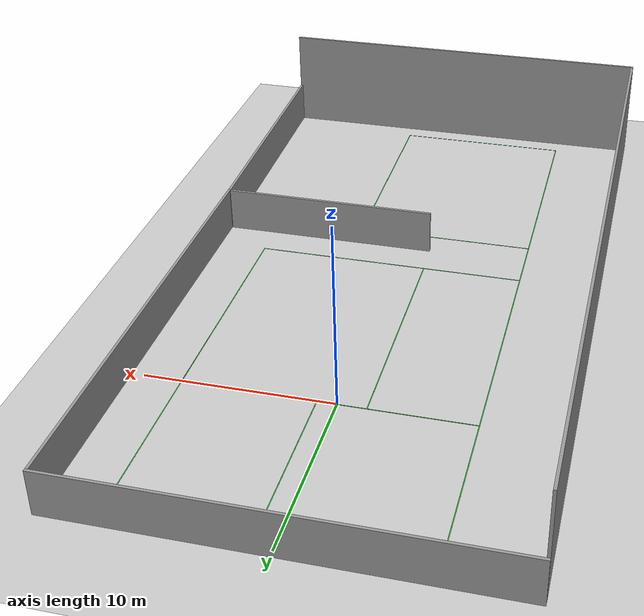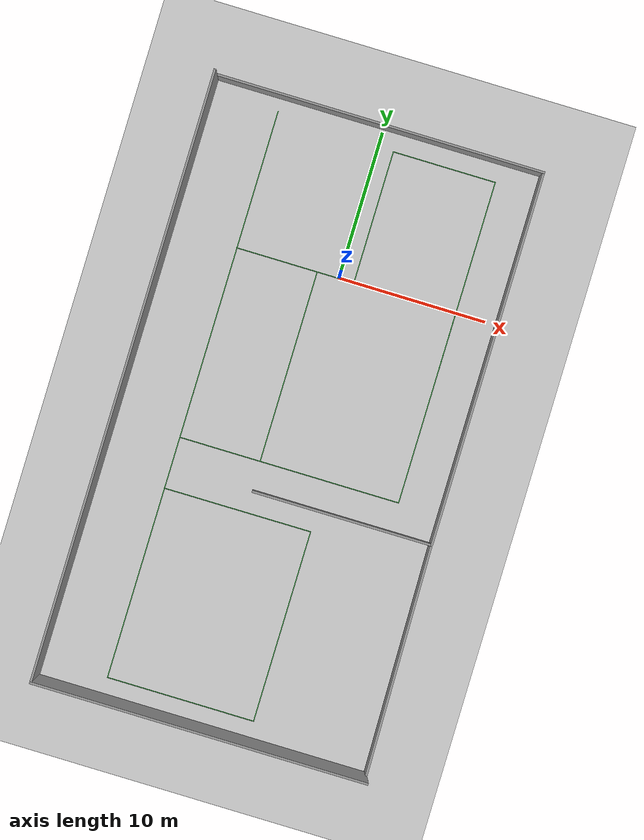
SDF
<sdf version="1.7">
 <world name="default">
  <gravity>0 0 -9.81</gravity>
  <magnetic_field>6e-06 2.3e-05 -4.2e-05</magnetic_field>
  <atmosphere type="adiabatic"/>
  <physics type="ode">
   <max_step_size>0.001</max_step_size>
   <real_time_factor>1</real_time_factor>
   <real_time_update_rate>1000</real_time_update_rate>
  </physics>
  <scene><ambient>0.4 0.4 0.4 1</ambient><background>0.7 0.7 0.7 1</background><shadows>1</shadows></scene>
  <spherical_coordinates>
   <surface_model>EARTH_WGS84</surface_model>
   <latitude_deg>0</latitude_deg>
   <longitude_deg>0</longitude_deg>
   <elevation>0</elevation>
   <heading_deg>0</heading_deg>
  </spherical_coordinates>
  <light name="sun" type="directional">
   <pose>-0.166662 0.016345 10 0 -0 0</pose>
   <diffuse>0.8 0.8 0.8 1</diffuse>
   <specular>0.2 0.2 0.2 1</specular>
   <attenuation>
    <range>1000</range>
    <constant>0.9</constant>
    <linear>0.01</linear>
    <quadratic>0.001</quadratic>
   </attenuation>
   <direction>-0.5 0.1 -0.9</direction>
   <spot><inner_angle>0</inner_angle><outer_angle>0</outer_angle><falloff>0</falloff></spot>
  </light>
  <model name="ground_plane">
   <static>1</static>
   <link name="link">
    <collision name="collision">
     <geometry><plane><normal>0 0 1</normal><size>100 100</size></plane></geometry>
     <surface><friction><ode><mu>100</mu><mu2>50</mu2></ode></friction></surface>
    </collision>
    <visual name="visual">
     <cast_shadows>0</cast_shadows>
     <geometry><plane><normal>0 0 1</normal><size>100 100</size></plane></geometry>
     <material>
      <script><uri>file://media/materials/scripts/gazebo.material</uri><name>Gazebo/Grey</name></script>
     </material>
    </visual>
   </link>
   <pose>-0.106054 1 0 0 0 -1.57</pose>
  </model>
  <model name="wherehuse">
   <link name="Wall_1">
    <pose>-12.6448 0.000598 0 0 -0 1.5708</pose>
    <inertial>
     <mass>1</mass>
     <inertia><ixx>1</ixx><ixy>0</ixy><ixz>0</ixz><iyy>1</iyy><iyz>0</iyz><izz>1</izz></inertia>
    </inertial>
    <visual name="Wall_1_Visual">
     <pose>0 0 3 0 -0 0</pose>
     <geometry><box><size>40.75 0.15 6</size></box></geometry>
     <material>
      <script><uri>file://media/materials/scripts/gazebo.material</uri><name>Gazebo/Grey</name></script>
      <ambient>1 1 1 1</ambient>
      <shader type="pixel"><normal_map>__default__</normal_map></shader>
      <diffuse>0.7 0.7 0.7 1</diffuse>
      <specular>0.01 0.01 0.01 1</specular>
      <emissive>0 0 0 1</emissive>
     </material>
     <meta><layer>0</layer></meta>
    </visual>
    <collision name="Wall_1_Collision">
     <pose>0 0 1.25 0 -0 0</pose>
     <geometry><box><size>40.75 0.15 2.5</size></box></geometry>
     <surface>
      <friction>
       <ode><mu>1</mu><mu2>1</mu2><fdir1>0 0 0</fdir1><slip1>0</slip1><slip2>0</slip2></ode>
       <torsional>
        <coefficient>1</coefficient>
        <patch_radius>0</patch_radius>
        <surface_radius>0</surface_radius>
        <use_patch_radius>1</use_patch_radius>
        <ode><slip>0</slip></ode>
       </torsional>
      </friction>
      <bounce><restitution_coefficient>0</restitution_coefficient><threshold>1e+06</threshold></bounce>
      <contact>
       <collide_without_contact>0</collide_without_contact>
       <collide_without_contact_bitmask>1</collide_without_contact_bitmask>
       <collide_bitmask>1</collide_bitmask>
       <ode>
        <soft_cfm>0</soft_cfm>
        <soft_erp>0.2</soft_erp>
        <kp>1e+13</kp>
        <kd>1</kd>
        <max_vel>0.01</max_vel>
        <min_depth>0</min_depth>
       </ode>
       <bullet>
        <split_impulse>1</split_impulse>
        <split_impulse_penetration_threshold>-0.01</split_impulse_penetration_threshold>
        <soft_cfm>0</soft_cfm>
        <soft_erp>0.2</soft_erp>
        <kp>1e+13</kp>
        <kd>1</kd>
       </bullet>
      </contact>
     </surface>
    </collision>
   </link>
   <link name="Wall_2">
    <pose>-1.572 20.4506 0 0 -0 0</pose>
    <inertial>
     <mass>1</mass>
     <inertia><ixx>1</ixx><ixy>0</ixy><ixz>0</ixz><iyy>1</iyy><iyz>0</iyz><izz>1</izz></inertia>
    </inertial>
    <visual name="Wall_2_Visual">
     <pose>0 0 1.25 0 -0 0</pose>
     <geometry><box><size>22.295 0.15 2.5</size></box></geometry>
     <material>
      <script><uri>file://media/materials/scripts/gazebo.material</uri><name>Gazebo/Grey</name></script>
      <ambient>1 1 1 1</ambient>
      <shader type="pixel"><normal_map>__default__</normal_map></shader>
      <diffuse>0.7 0.7 0.7 1</diffuse>
      <specular>0.01 0.01 0.01 1</specular>
      <emissive>0 0 0 1</emissive>
     </material>
     <meta><layer>0</layer></meta>
    </visual>
    <collision name="Wall_2_Collision">
     <pose>0 0 1.25 0 -0 0</pose>
     <geometry><box><size>25.25 0.15 2.5</size></box></geometry>
     <surface>
      <friction>
       <ode><mu>1</mu><mu2>1</mu2><fdir1>0 0 0</fdir1><slip1>0</slip1><slip2>0</slip2></ode>
       <torsional>
        <coefficient>1</coefficient>
        <patch_radius>0</patch_radius>
        <surface_radius>0</surface_radius>
        <use_patch_radius>1</use_patch_radius>
        <ode><slip>0</slip></ode>
       </torsional>
      </friction>
      <bounce><restitution_coefficient>0</restitution_coefficient><threshold>1e+06</threshold></bounce>
      <contact>
       <collide_without_contact>0</collide_without_contact>
       <collide_without_contact_bitmask>1</collide_without_contact_bitmask>
       <collide_bitmask>1</collide_bitmask>
       <ode>
        <soft_cfm>0</soft_cfm>
        <soft_erp>0.2</soft_erp>
        <kp>1e+13</kp>
        <kd>1</kd>
        <max_vel>0.01</max_vel>
        <min_depth>0</min_depth>
       </ode>
       <bullet>
        <split_impulse>1</split_impulse>
        <split_impulse_penetration_threshold>-0.01</split_impulse_penetration_threshold>
        <soft_cfm>0</soft_cfm>
        <soft_erp>0.2</soft_erp>
        <kp>1e+13</kp>
        <kd>1</kd>
       </bullet>
      </contact>
     </surface>
    </collision>
   </link>
   <link name="Wall_3">
    <pose>9.5 7.75061 0 0 0 -1.5708</pose>
    <inertial>
     <mass>1</mass>
     <inertia><ixx>1</ixx><ixy>0</ixy><ixz>0</ixz><iyy>1</iyy><iyz>0</iyz><izz>1</izz></inertia>
    </inertial>
    <visual name="Wall_3_Visual">
     <pose>0 0 1.25 0 -0 0</pose>
     <geometry><box><size>25.25 0.15 2.5</size></box></geometry>
     <material>
      <script><uri>file://media/materials/scripts/gazebo.material</uri><name>Gazebo/Grey</name></script>
      <ambient>1 1 1 1</ambient>
      <shader type="pixel"><normal_map>__default__</normal_map></shader>
      <diffuse>0.7 0.7 0.7 1</diffuse>
      <specular>0.01 0.01 0.01 1</specular>
      <emissive>0 0 0 1</emissive>
     </material>
     <meta><layer>0</layer></meta>
    </visual>
    <collision name="Wall_3_Collision">
     <pose>0 0 1.25 0 -0 0</pose>
     <geometry><box><size>25.25 0.15 2.5</size></box></geometry>
     <surface>
      <friction>
       <ode><mu>1</mu><mu2>1</mu2><fdir1>0 0 0</fdir1><slip1>0</slip1><slip2>0</slip2></ode>
       <torsional>
        <coefficient>1</coefficient>
        <patch_radius>0</patch_radius>
        <surface_radius>0</surface_radius>
        <use_patch_radius>1</use_patch_radius>
        <ode><slip>0</slip></ode>
       </torsional>
      </friction>
      <bounce><restitution_coefficient>0</restitution_coefficient><threshold>1e+06</threshold></bounce>
      <contact>
       <collide_without_contact>0</collide_without_contact>
       <collide_without_contact_bitmask>1</collide_without_contact_bitmask>
       <collide_bitmask>1</collide_bitmask>
       <ode>
        <soft_cfm>0</soft_cfm>
        <soft_erp>0.2</soft_erp>
        <kp>1e+13</kp>
        <kd>1</kd>
        <max_vel>0.01</max_vel>
        <min_depth>0</min_depth>
       </ode>
       <bullet>
        <split_impulse>1</split_impulse>
        <split_impulse_penetration_threshold>-0.01</split_impulse_penetration_threshold>
        <soft_cfm>0</soft_cfm>
        <soft_erp>0.2</soft_erp>
        <kp>1e+13</kp>
        <kd>1</kd>
       </bullet>
      </contact>
     </surface>
    </collision>
   </link>
   <link name="Wall_5">
    <pose>3.45 -4.7994 0 0 -0 3.14159</pose>
    <inertial>
     <mass>1</mass>
     <inertia><ixx>1</ixx><ixy>0</ixy><ixz>0</ixz><iyy>1</iyy><iyz>0</iyz><izz>1</izz></inertia>
    </inertial>
    <visual name="Wall_5_Visual">
     <pose>0 0 1.25 0 -0 0</pose>
     <geometry><box><size>12.25 0.15 2.5</size></box></geometry>
     <material>
      <script><uri>file://media/materials/scripts/gazebo.material</uri><name>Gazebo/Grey</name></script>
      <ambient>1 1 1 1</ambient>
      <shader type="pixel"><normal_map>__default__</normal_map></shader>
      <diffuse>0.7 0.7 0.7 1</diffuse>
      <specular>0.01 0.01 0.01 1</specular>
      <emissive>0 0 0 1</emissive>
     </material>
     <meta><layer>0</layer></meta>
    </visual>
    <collision name="Wall_5_Collision">
     <pose>0 0 1.25 0 -0 0</pose>
     <geometry><box><size>12.25 0.15 2.5</size></box></geometry>
     <surface>
      <friction>
       <ode><mu>1</mu><mu2>1</mu2><fdir1>0 0 0</fdir1><slip1>0</slip1><slip2>0</slip2></ode>
       <torsional>
        <coefficient>1</coefficient>
        <patch_radius>0</patch_radius>
        <surface_radius>0</surface_radius>
        <use_patch_radius>1</use_patch_radius>
        <ode><slip>0</slip></ode>
       </torsional>
      </friction>
      <bounce><restitution_coefficient>0</restitution_coefficient><threshold>1e+06</threshold></bounce>
      <contact>
       <collide_without_contact>0</collide_without_contact>
       <collide_without_contact_bitmask>1</collide_without_contact_bitmask>
       <collide_bitmask>1</collide_bitmask>
       <ode>
        <soft_cfm>0</soft_cfm>
        <soft_erp>0.2</soft_erp>
        <kp>1e+13</kp>
        <kd>1</kd>
        <max_vel>0.01</max_vel>
        <min_depth>0</min_depth>
       </ode>
       <bullet>
        <split_impulse>1</split_impulse>
        <split_impulse_penetration_threshold>-0.01</split_impulse_penetration_threshold>
        <soft_cfm>0</soft_cfm>
        <soft_erp>0.2</soft_erp>
        <kp>1e+13</kp>
        <kd>1</kd>
       </bullet>
      </contact>
     </surface>
    </collision>
   </link>
   <link name="Wall_7">
    <pose>-1.458 -20.4495 0 0 -0 0</pose>
    <inertial>
     <mass>1</mass>
     <inertia><ixx>1</ixx><ixy>0</ixy><ixz>0</ixz><iyy>1</iyy><iyz>0</iyz><izz>1</izz></inertia>
    </inertial>
    <visual name="Wall_7_Visual">
     <pose>0 0 3 0 -0 0</pose>
     <geometry><box><size>22.525 0.15 6</size></box></geometry>
     <material>
      <script><uri>file://media/materials/scripts/gazebo.material</uri><name>Gazebo/Grey</name></script>
      <ambient>1 1 1 1</ambient>
      <shader type="pixel"><normal_map>__default__</normal_map></shader>
      <diffuse>0.7 0.7 0.7 1</diffuse>
      <specular>0.01 0.01 0.01 1</specular>
      <emissive>0 0 0 1</emissive>
     </material>
     <meta><layer>0</layer></meta>
    </visual>
    <collision name="Wall_7_Collision">
     <pose>0 0 1.25 0 -0 0</pose>
     <geometry><box><size>25.5 0.15 2.5</size></box></geometry>
     <surface>
      <friction>
       <ode><mu>1</mu><mu2>1</mu2><fdir1>0 0 0</fdir1><slip1>0</slip1><slip2>0</slip2></ode>
       <torsional>
        <coefficient>1</coefficient>
        <patch_radius>0</patch_radius>
        <surface_radius>0</surface_radius>
        <use_patch_radius>1</use_patch_radius>
        <ode><slip>0</slip></ode>
       </torsional>
      </friction>
      <bounce><restitution_coefficient>0</restitution_coefficient><threshold>1e+06</threshold></bounce>
      <contact>
       <collide_without_contact>0</collide_without_contact>
       <collide_without_contact_bitmask>1</collide_without_contact_bitmask>
       <collide_bitmask>1</collide_bitmask>
       <ode>
        <soft_cfm>0</soft_cfm>
        <soft_erp>0.2</soft_erp>
        <kp>1e+13</kp>
        <kd>1</kd>
        <max_vel>0.01</max_vel>
        <min_depth>0</min_depth>
       </ode>
       <bullet>
        <split_impulse>1</split_impulse>
        <split_impulse_penetration_threshold>-0.01</split_impulse_penetration_threshold>
        <soft_cfm>0</soft_cfm>
        <soft_erp>0.2</soft_erp>
        <kp>1e+13</kp>
        <kd>1</kd>
       </bullet>
      </contact>
     </surface>
    </collision>
   </link>
   <link name="Wall_8">
    <pose>9.60656 -12.5245 0 0 -0 1.58692</pose>
    <inertial>
     <mass>1</mass>
     <inertia><ixx>1</ixx><ixy>0</ixy><ixz>0</ixz><iyy>1</iyy><iyz>0</iyz><izz>1</izz></inertia>
    </inertial>
    <visual name="Wall_8_Visual">
     <pose>0 0 1.25 0 -0 0</pose>
     <geometry><box><size>15.652 0.15 2.5</size></box></geometry>
     <material>
      <script><uri>file://media/materials/scripts/gazebo.material</uri><name>Gazebo/Grey</name></script>
      <ambient>1 1 1 1</ambient>
      <shader type="pixel"><normal_map>__default__</normal_map></shader>
      <diffuse>0.7 0.7 0.7 1</diffuse>
      <specular>0.01 0.01 0.01 1</specular>
      <emissive>0 0 0 1</emissive>
     </material>
     <meta><layer>0</layer></meta>
    </visual>
    <collision name="Wall_8_Collision">
     <pose>0 0 1.25 0 -0 0</pose>
     <geometry><box><size>15.652 0.15 2.5</size></box></geometry>
     <surface>
      <friction>
       <ode><mu>1</mu><mu2>1</mu2><fdir1>0 0 0</fdir1><slip1>0</slip1><slip2>0</slip2></ode>
       <torsional>
        <coefficient>1</coefficient>
        <patch_radius>0</patch_radius>
        <surface_radius>0</surface_radius>
        <use_patch_radius>1</use_patch_radius>
        <ode><slip>0</slip></ode>
       </torsional>
      </friction>
      <bounce><restitution_coefficient>0</restitution_coefficient><threshold>1e+06</threshold></bounce>
      <contact>
       <collide_without_contact>0</collide_without_contact>
       <collide_without_contact_bitmask>1</collide_without_contact_bitmask>
       <collide_bitmask>1</collide_bitmask>
       <ode>
        <soft_cfm>0</soft_cfm>
        <soft_erp>0.2</soft_erp>
        <kp>1e+13</kp>
        <kd>1</kd>
        <max_vel>0.01</max_vel>
        <min_depth>0</min_depth>
       </ode>
       <bullet>
        <split_impulse>1</split_impulse>
        <split_impulse_penetration_threshold>-0.01</split_impulse_penetration_threshold>
        <soft_cfm>0</soft_cfm>
        <soft_erp>0.2</soft_erp>
        <kp>1e+13</kp>
        <kd>1</kd>
       </bullet>
      </contact>
     </surface>
    </collision>
   </link>
   <static>1</static>
   <pose>1.2324 -10.1771 0 0 -0 0</pose>
  </model>
  <model name="line5">
   <link name="link">
    <inertial>
     <mass>1e+20</mass>
     <inertia>
      <ixx>1.66667e+19</ixx>
      <ixy>0</ixy>
      <ixz>0</ixz>
      <iyy>1.66667e+19</iyy>
      <iyz>0</iyz>
      <izz>1.66667e+19</izz>
     </inertia>
    </inertial>
    <visual name="visual">
     <geometry><box><size>7 0.05 0.002</size></box></geometry>
     <material>
      <script><name>Gazebo/Green</name><uri>file://media/materials/scripts/gazebo.material</uri></script>
      <shader type="pixel"><normal_map>__default__</normal_map></shader>
      <ambient>0.451 0.824 0.086 1</ambient>
      <diffuse>0.7 0.7 0.7 1</diffuse>
      <specular>0.01 0.01 0.01 1</specular>
      <emissive>0 0 0 1</emissive>
     </material>
    </visual>
    <collision name="collision">
     <geometry><box><size>1 0.0001 0.001</size></box></geometry>
     <surface>
      <friction>
       <ode><mu>1</mu><mu2>1</mu2><fdir1>0 0 0</fdir1><slip1>0</slip1><slip2>0</slip2></ode>
       <torsional>
        <coefficient>1</coefficient>
        <patch_radius>0</patch_radius>
        <surface_radius>0</surface_radius>
        <use_patch_radius>1</use_patch_radius>
        <ode><slip>0</slip></ode>
       </torsional>
      </friction>
      <bounce><restitution_coefficient>0</restitution_coefficient><threshold>1e+06</threshold></bounce>
      <contact>
       <collide_without_contact>0</collide_without_contact>
       <collide_without_contact_bitmask>1</collide_without_contact_bitmask>
       <collide_bitmask>1</collide_bitmask>
       <ode>
        <soft_cfm>0</soft_cfm>
        <soft_erp>0.2</soft_erp>
        <kp>1e+13</kp>
        <kd>1</kd>
        <max_vel>0.01</max_vel>
        <min_depth>0</min_depth>
       </ode>
       <bullet>
        <split_impulse>1</split_impulse>
        <split_impulse_penetration_threshold>-0.01</split_impulse_penetration_threshold>
        <soft_cfm>0</soft_cfm>
        <soft_erp>0.2</soft_erp>
        <kp>1e+13</kp>
        <kd>1</kd>
       </bullet>
      </contact>
     </surface>
    </collision>
   </link>
   <static>1</static>
   <pose>4.5 9 0.001 0 -0 0</pose>
  </model>
  <model name="line4">
   <link name="link">
    <inertial>
     <mass>1e+20</mass>
     <inertia>
      <ixx>1.66667e+19</ixx>
      <ixy>0</ixy>
      <ixz>0</ixz>
      <iyy>1.66667e+19</iyy>
      <iyz>0</iyz>
      <izz>1.66667e+19</izz>
     </inertia>
    </inertial>
    <visual name="visual">
     <geometry><box><size>13.05 0.05 0.002</size></box></geometry>
     <material>
      <script><name>Gazebo/Green</name><uri>file://media/materials/scripts/gazebo.material</uri></script>
      <shader type="pixel"><normal_map>__default__</normal_map></shader>
      <ambient>0.451 0.824 0.086 1</ambient>
      <diffuse>0.7 0.7 0.7 1</diffuse>
      <specular>0.01 0.01 0.01 1</specular>
      <emissive>0 0 0 1</emissive>
     </material>
    </visual>
    <collision name="collision">
     <geometry><box><size>0.868721 0.0001 0.001</size></box></geometry>
     <surface>
      <friction>
       <ode><mu>1</mu><mu2>1</mu2><fdir1>0 0 0</fdir1><slip1>0</slip1><slip2>0</slip2></ode>
       <torsional>
        <coefficient>1</coefficient>
        <patch_radius>0</patch_radius>
        <surface_radius>0</surface_radius>
        <use_patch_radius>1</use_patch_radius>
        <ode><slip>0</slip></ode>
       </torsional>
      </friction>
      <bounce><restitution_coefficient>0</restitution_coefficient><threshold>1e+06</threshold></bounce>
      <contact>
       <collide_without_contact>0</collide_without_contact>
       <collide_without_contact_bitmask>1</collide_without_contact_bitmask>
       <collide_bitmask>1</collide_bitmask>
       <ode>
        <soft_cfm>0</soft_cfm>
        <soft_erp>0.2</soft_erp>
        <kp>1e+13</kp>
        <kd>1</kd>
        <max_vel>0.01</max_vel>
        <min_depth>0</min_depth>
       </ode>
       <bullet>
        <split_impulse>1</split_impulse>
        <split_impulse_penetration_threshold>-0.01</split_impulse_penetration_threshold>
        <soft_cfm>0</soft_cfm>
        <soft_erp>0.2</soft_erp>
        <kp>1e+13</kp>
        <kd>1</kd>
       </bullet>
      </contact>
     </surface>
    </collision>
   </link>
   <static>1</static>
   <pose>-1.5 -6.5 0.001 0 -0 1.57</pose>
  </model>
  <model name="line6">
   <link name="link">
    <inertial>
     <mass>1e+20</mass>
     <inertia>
      <ixx>1.66667e+19</ixx>
      <ixy>0</ixy>
      <ixz>0</ixz>
      <iyy>1.66667e+19</iyy>
      <iyz>0</iyz>
      <izz>1.66667e+19</izz>
     </inertia>
    </inertial>
    <visual name="visual">
     <geometry><box><size>13.05 0.05 0.002</size></box></geometry>
     <material>
      <script><name>Gazebo/Green</name><uri>file://media/materials/scripts/gazebo.material</uri></script>
      <shader type="pixel"><normal_map>__default__</normal_map></shader>
      <ambient>0.451 0.824 0.086 1</ambient>
      <diffuse>0.7 0.7 0.7 1</diffuse>
      <specular>0.01 0.01 0.01 1</specular>
      <emissive>0 0 0 1</emissive>
     </material>
    </visual>
    <collision name="collision">
     <geometry><box><size>0.868721 0.0001 0.001</size></box></geometry>
     <surface>
      <friction>
       <ode><mu>1</mu><mu2>1</mu2><fdir1>0 0 0</fdir1><slip1>0</slip1><slip2>0</slip2></ode>
       <torsional>
        <coefficient>1</coefficient>
        <patch_radius>0</patch_radius>
        <surface_radius>0</surface_radius>
        <use_patch_radius>1</use_patch_radius>
        <ode><slip>0</slip></ode>
       </torsional>
      </friction>
      <bounce><restitution_coefficient>0</restitution_coefficient><threshold>1e+06</threshold></bounce>
      <contact>
       <collide_without_contact>0</collide_without_contact>
       <collide_without_contact_bitmask>1</collide_without_contact_bitmask>
       <collide_bitmask>1</collide_bitmask>
       <ode>
        <soft_cfm>0</soft_cfm>
        <soft_erp>0.2</soft_erp>
        <kp>1e+13</kp>
        <kd>1</kd>
        <max_vel>0.01</max_vel>
        <min_depth>0</min_depth>
       </ode>
       <bullet>
        <split_impulse>1</split_impulse>
        <split_impulse_penetration_threshold>-0.01</split_impulse_penetration_threshold>
        <soft_cfm>0</soft_cfm>
        <soft_erp>0.2</soft_erp>
        <kp>1e+13</kp>
        <kd>1</kd>
       </bullet>
      </contact>
     </surface>
    </collision>
   </link>
   <static>1</static>
   <pose>8.01 2.5 0.001 0 -0 1.57</pose>
  </model>
  <model name="line2">
   <link name="link">
    <inertial>
     <mass>1e+20</mass>
     <inertia>
      <ixx>1.66667e+19</ixx>
      <ixy>0</ixy>
      <ixz>0</ixz>
      <iyy>1.66667e+19</iyy>
      <iyz>0</iyz>
      <izz>1.66667e+19</izz>
     </inertia>
    </inertial>
    <visual name="visual">
     <geometry><box><size>13.05 0.05 0.002</size></box></geometry>
     <material>
      <script><name>Gazebo/Green</name><uri>file://media/materials/scripts/gazebo.material</uri></script>
      <shader type="pixel"><normal_map>__default__</normal_map></shader>
      <ambient>0.451 0.824 0.086 1</ambient>
      <diffuse>0.7 0.7 0.7 1</diffuse>
      <specular>0.01 0.01 0.01 1</specular>
      <emissive>0 0 0 1</emissive>
     </material>
    </visual>
    <collision name="collision">
     <geometry><box><size>0.868721 0.0001 0.001</size></box></geometry>
     <surface>
      <friction>
       <ode><mu>1</mu><mu2>1</mu2><fdir1>0 0 0</fdir1><slip1>0</slip1><slip2>0</slip2></ode>
       <torsional>
        <coefficient>1</coefficient>
        <patch_radius>0</patch_radius>
        <surface_radius>0</surface_radius>
        <use_patch_radius>1</use_patch_radius>
        <ode><slip>0</slip></ode>
       </torsional>
      </friction>
      <bounce><restitution_coefficient>0</restitution_coefficient><threshold>1e+06</threshold></bounce>
      <contact>
       <collide_without_contact>0</collide_without_contact>
       <collide_without_contact_bitmask>1</collide_without_contact_bitmask>
       <collide_bitmask>1</collide_bitmask>
       <ode>
        <soft_cfm>0</soft_cfm>
        <soft_erp>0.2</soft_erp>
        <kp>1e+13</kp>
        <kd>1</kd>
        <max_vel>0.01</max_vel>
        <min_depth>0</min_depth>
       </ode>
       <bullet>
        <split_impulse>1</split_impulse>
        <split_impulse_penetration_threshold>-0.01</split_impulse_penetration_threshold>
        <soft_cfm>0</soft_cfm>
        <soft_erp>0.2</soft_erp>
        <kp>1e+13</kp>
        <kd>1</kd>
       </bullet>
      </contact>
     </surface>
    </collision>
   </link>
   <static>1</static>
   <pose>8 -6.50059 0.001 0 -0 1.57</pose>
  </model>
  <model name="line1">
   <link name="link">
    <inertial>
     <mass>1e+20</mass>
     <inertia>
      <ixx>1.66667e+19</ixx>
      <ixy>0</ixy>
      <ixz>0</ixz>
      <iyy>1.66667e+19</iyy>
      <iyz>0</iyz>
      <izz>1.66667e+19</izz>
     </inertia>
    </inertial>
    <visual name="visual">
     <geometry><box><size>15 0.05 0.002</size></box></geometry>
     <material>
      <script><name>Gazebo/Green</name><uri>file://media/materials/scripts/gazebo.material</uri></script>
      <shader type="pixel"><normal_map>__default__</normal_map></shader>
      <ambient>0.451 0.824 0.086 1</ambient>
      <diffuse>0.7 0.7 0.7 1</diffuse>
      <specular>0.01 0.01 0.01 1</specular>
      <emissive>0 0 0 1</emissive>
     </material>
    </visual>
    <collision name="collision">
     <geometry><box><size>1 0.0001 0.001</size></box></geometry>
     <surface>
      <friction>
       <ode><mu>1</mu><mu2>1</mu2><fdir1>0 0 0</fdir1><slip1>0</slip1><slip2>0</slip2></ode>
       <torsional>
        <coefficient>1</coefficient>
        <patch_radius>0</patch_radius>
        <surface_radius>0</surface_radius>
        <use_patch_radius>1</use_patch_radius>
        <ode><slip>0</slip></ode>
       </torsional>
      </friction>
      <bounce><restitution_coefficient>0</restitution_coefficient><threshold>1e+06</threshold></bounce>
      <contact>
       <collide_without_contact>0</collide_without_contact>
       <collide_without_contact_bitmask>1</collide_without_contact_bitmask>
       <collide_bitmask>1</collide_bitmask>
       <ode>
        <soft_cfm>0</soft_cfm>
        <soft_erp>0.2</soft_erp>
        <kp>1e+13</kp>
        <kd>1</kd>
        <max_vel>0.01</max_vel>
        <min_depth>0</min_depth>
       </ode>
       <bullet>
        <split_impulse>1</split_impulse>
        <split_impulse_penetration_threshold>-0.01</split_impulse_penetration_threshold>
        <soft_cfm>0</soft_cfm>
        <soft_erp>0.2</soft_erp>
        <kp>1e+13</kp>
        <kd>1</kd>
       </bullet>
      </contact>
     </surface>
    </collision>
   </link>
   <static>1</static>
   <pose>0.47 0 0 0 -0 0</pose>
  </model>
  <model name="line7">
   <link name="link">
    <inertial>
     <mass>1e+20</mass>
     <inertia>
      <ixx>1.66667e+19</ixx>
      <ixy>0</ixy>
      <ixz>0</ixz>
      <iyy>1.66667e+19</iyy>
      <iyz>0</iyz>
      <izz>1.66667e+19</izz>
     </inertia>
    </inertial>
    <visual name="visual">
     <geometry><box><size>9 0.05 0.002</size></box></geometry>
     <material>
      <script><name>Gazebo/Green</name><uri>file://media/materials/scripts/gazebo.material</uri></script>
      <shader type="pixel"><normal_map>__default__</normal_map></shader>
      <ambient>0.451 0.824 0.086 1</ambient>
      <diffuse>0.7 0.7 0.7 1</diffuse>
      <specular>0.01 0.01 0.01 1</specular>
      <emissive>0 0 0 1</emissive>
     </material>
    </visual>
    <collision name="collision">
     <geometry><box><size>0.868721 0.0001 0.001</size></box></geometry>
     <surface>
      <friction>
       <ode><mu>1</mu><mu2>1</mu2><fdir1>0 0 0</fdir1><slip1>0</slip1><slip2>0</slip2></ode>
       <torsional>
        <coefficient>1</coefficient>
        <patch_radius>0</patch_radius>
        <surface_radius>0</surface_radius>
        <use_patch_radius>1</use_patch_radius>
        <ode><slip>0</slip></ode>
       </torsional>
      </friction>
      <bounce><restitution_coefficient>0</restitution_coefficient><threshold>1e+06</threshold></bounce>
      <contact>
       <collide_without_contact>0</collide_without_contact>
       <collide_without_contact_bitmask>1</collide_without_contact_bitmask>
       <collide_bitmask>1</collide_bitmask>
       <ode>
        <soft_cfm>0</soft_cfm>
        <soft_erp>0.2</soft_erp>
        <kp>1e+13</kp>
        <kd>1</kd>
        <max_vel>0.01</max_vel>
        <min_depth>0</min_depth>
       </ode>
       <bullet>
        <split_impulse>1</split_impulse>
        <split_impulse_penetration_threshold>-0.01</split_impulse_penetration_threshold>
        <soft_cfm>0</soft_cfm>
        <soft_erp>0.2</soft_erp>
        <kp>1e+13</kp>
        <kd>1</kd>
       </bullet>
      </contact>
     </surface>
    </collision>
   </link>
   <static>1</static>
   <pose>1.021 4.485 0 0 -0 1.57</pose>
  </model>
  <model name="line8">
   <link name="link">
    <inertial>
     <mass>1e+20</mass>
     <inertia>
      <ixx>1.66667e+19</ixx>
      <ixy>0</ixy>
      <ixz>0</ixz>
      <iyy>1.66667e+19</iyy>
      <iyz>0</iyz>
      <izz>1.66667e+19</izz>
     </inertia>
    </inertial>
    <visual name="visual">
     <geometry><box><size>15 0.05 0.002</size></box></geometry>
     <material>
      <script><name>Gazebo/Green</name><uri>file://media/materials/scripts/gazebo.material</uri></script>
      <shader type="pixel"><normal_map>__default__</normal_map></shader>
      <ambient>0.451 0.824 0.086 1</ambient>
      <diffuse>0.7 0.7 0.7 1</diffuse>
      <specular>0.01 0.01 0.01 1</specular>
      <emissive>0 0 0 1</emissive>
     </material>
    </visual>
    <collision name="collision">
     <geometry><box><size>1 0.0001 0.001</size></box></geometry>
     <surface>
      <friction>
       <ode><mu>1</mu><mu2>1</mu2><fdir1>0 0 0</fdir1><slip1>0</slip1><slip2>0</slip2></ode>
       <torsional>
        <coefficient>1</coefficient>
        <patch_radius>0</patch_radius>
        <surface_radius>0</surface_radius>
        <use_patch_radius>1</use_patch_radius>
        <ode><slip>0</slip></ode>
       </torsional>
      </friction>
      <bounce><restitution_coefficient>0</restitution_coefficient><threshold>1e+06</threshold></bounce>
      <contact>
       <collide_without_contact>0</collide_without_contact>
       <collide_without_contact_bitmask>1</collide_without_contact_bitmask>
       <collide_bitmask>1</collide_bitmask>
       <ode>
        <soft_cfm>0</soft_cfm>
        <soft_erp>0.2</soft_erp>
        <kp>1e+13</kp>
        <kd>1</kd>
        <max_vel>0.01</max_vel>
        <min_depth>0</min_depth>
       </ode>
       <bullet>
        <split_impulse>1</split_impulse>
        <split_impulse_penetration_threshold>-0.01</split_impulse_penetration_threshold>
        <soft_cfm>0</soft_cfm>
        <soft_erp>0.2</soft_erp>
        <kp>1e+13</kp>
        <kd>1</kd>
       </bullet>
      </contact>
     </surface>
    </collision>
   </link>
   <static>1</static>
   <pose>0.5 -13 0 0 -0 0</pose>
  </model>
  <model name="line3">
   <link name="link">
    <inertial>
     <mass>1e+20</mass>
     <inertia>
      <ixx>1.66667e+19</ixx>
      <ixy>0</ixy>
      <ixz>0</ixz>
      <iyy>1.66667e+19</iyy>
      <iyz>0</iyz>
      <izz>1.66667e+19</izz>
     </inertia>
    </inertial>
    <visual name="visual">
     <geometry><box><size>25.852 0.05 0.002</size></box></geometry>
     <material>
      <script><name>Gazebo/Green</name><uri>file://media/materials/scripts/gazebo.material</uri></script>
      <shader type="pixel"><normal_map>__default__</normal_map></shader>
      <ambient>0.451 0.824 0.086 1</ambient>
      <diffuse>0.7 0.7 0.7 1</diffuse>
      <specular>0.01 0.01 0.01 1</specular>
      <emissive>0 0 0 1</emissive>
     </material>
    </visual>
    <collision name="collision">
     <geometry><box><size>1.72346 0.0001 0.001</size></box></geometry>
     <surface>
      <friction>
       <ode><mu>1</mu><mu2>1</mu2><fdir1>0 0 0</fdir1><slip1>0</slip1><slip2>0</slip2></ode>
       <torsional>
        <coefficient>1</coefficient>
        <patch_radius>0</patch_radius>
        <surface_radius>0</surface_radius>
        <use_patch_radius>1</use_patch_radius>
        <ode><slip>0</slip></ode>
       </torsional>
      </friction>
      <bounce><restitution_coefficient>0</restitution_coefficient><threshold>1e+06</threshold></bounce>
      <contact>
       <collide_without_contact>0</collide_without_contact>
       <collide_without_contact_bitmask>1</collide_without_contact_bitmask>
       <collide_bitmask>1</collide_bitmask>
       <ode>
        <soft_cfm>0</soft_cfm>
        <soft_erp>0.2</soft_erp>
        <kp>1e+13</kp>
        <kd>1</kd>
        <max_vel>0.01</max_vel>
        <min_depth>0</min_depth>
       </ode>
       <bullet>
        <split_impulse>1</split_impulse>
        <split_impulse_penetration_threshold>-0.01</split_impulse_penetration_threshold>
        <soft_cfm>0</soft_cfm>
        <soft_erp>0.2</soft_erp>
        <kp>1e+13</kp>
        <kd>1</kd>
       </bullet>
      </contact>
     </surface>
    </collision>
   </link>
   <static>1</static>
   <pose>-7.00203 -3.54402 0 0 -0 1.57</pose>
  </model>
  <model name="line4_clone">
   <link name="link">
    <inertial>
     <mass>1e+20</mass>
     <inertia>
      <ixx>1.66667e+19</ixx>
      <ixy>0</ixy>
      <ixz>0</ixz>
      <iyy>1.66667e+19</iyy>
      <iyz>0</iyz>
      <izz>1.66667e+19</izz>
     </inertia>
    </inertial>
    <visual name="visual">
     <geometry><box><size>13.05 0.05 0.002</size></box></geometry>
     <material>
      <script><name>Gazebo/Green</name><uri>file://media/materials/scripts/gazebo.material</uri></script>
      <shader type="pixel"><normal_map>__default__</normal_map></shader>
      <ambient>0.451 0.824 0.086 1</ambient>
      <diffuse>0.7 0.7 0.7 1</diffuse>
      <specular>0.01 0.01 0.01 1</specular>
      <emissive>0 0 0 1</emissive>
     </material>
    </visual>
    <collision name="collision">
     <geometry><box><size>0.868721 0.0001 0.001</size></box></geometry>
     <surface>
      <friction>
       <ode><mu>1</mu><mu2>1</mu2><fdir1>0 0 0</fdir1><slip1>0</slip1><slip2>0</slip2></ode>
       <torsional>
        <coefficient>1</coefficient>
        <patch_radius>0</patch_radius>
        <surface_radius>0</surface_radius>
        <use_patch_radius>1</use_patch_radius>
        <ode><slip>0</slip></ode>
       </torsional>
      </friction>
      <bounce><restitution_coefficient>0</restitution_coefficient><threshold>1e+06</threshold></bounce>
      <contact>
       <collide_without_contact>0</collide_without_contact>
       <collide_without_contact_bitmask>1</collide_without_contact_bitmask>
       <collide_bitmask>1</collide_bitmask>
       <ode>
        <soft_cfm>0</soft_cfm>
        <soft_erp>0.2</soft_erp>
        <kp>1e+13</kp>
        <kd>1</kd>
        <max_vel>0.01</max_vel>
        <min_depth>0</min_depth>
       </ode>
       <bullet>
        <split_impulse>1</split_impulse>
        <split_impulse_penetration_threshold>-0.01</split_impulse_penetration_threshold>
        <soft_cfm>0</soft_cfm>
        <soft_erp>0.2</soft_erp>
        <kp>1e+13</kp>
        <kd>1</kd>
       </bullet>
      </contact>
     </surface>
    </collision>
   </link>
   <static>1</static>
   <pose>-7.018 -22.98 0.001 0 -0 1.57</pose>
  </model>
  <model name="line4_clone_clone">
   <link name="link">
    <inertial>
     <mass>1e+20</mass>
     <inertia>
      <ixx>1.66667e+19</ixx>
      <ixy>0</ixy>
      <ixz>0</ixz>
      <iyy>1.66667e+19</iyy>
      <iyz>0</iyz>
      <izz>1.66667e+19</izz>
     </inertia>
    </inertial>
    <visual name="visual">
     <geometry><box><size>13.05 0.05 0.002</size></box></geometry>
     <material>
      <script><name>Gazebo/Green</name><uri>file://media/materials/scripts/gazebo.material</uri></script>
      <shader type="pixel"><normal_map>__default__</normal_map></shader>
      <ambient>0.451 0.824 0.086 1</ambient>
      <diffuse>0.7 0.7 0.7 1</diffuse>
      <specular>0.01 0.01 0.01 1</specular>
      <emissive>0 0 0 1</emissive>
     </material>
    </visual>
    <collision name="collision">
     <geometry><box><size>0.868721 0.0001 0.001</size></box></geometry>
     <surface>
      <friction>
       <ode><mu>1</mu><mu2>1</mu2><fdir1>0 0 0</fdir1><slip1>0</slip1><slip2>0</slip2></ode>
       <torsional>
        <coefficient>1</coefficient>
        <patch_radius>0</patch_radius>
        <surface_radius>0</surface_radius>
        <use_patch_radius>1</use_patch_radius>
        <ode><slip>0</slip></ode>
       </torsional>
      </friction>
      <bounce><restitution_coefficient>0</restitution_coefficient><threshold>1e+06</threshold></bounce>
      <contact>
       <collide_without_contact>0</collide_without_contact>
       <collide_without_contact_bitmask>1</collide_without_contact_bitmask>
       <collide_bitmask>1</collide_bitmask>
       <ode>
        <soft_cfm>0</soft_cfm>
        <soft_erp>0.2</soft_erp>
        <kp>1e+13</kp>
        <kd>1</kd>
        <max_vel>0.01</max_vel>
        <min_depth>0</min_depth>
       </ode>
       <bullet>
        <split_impulse>1</split_impulse>
        <split_impulse_penetration_threshold>-0.01</split_impulse_penetration_threshold>
        <soft_cfm>0</soft_cfm>
        <soft_erp>0.2</soft_erp>
        <kp>1e+13</kp>
        <kd>1</kd>
       </bullet>
      </contact>
     </surface>
    </collision>
   </link>
   <static>1</static>
   <pose>3 -22.98 0.001 0 -0 1.57</pose>
  </model>
  <model name="line4_clone_clone_clone">
   <link name="link">
    <inertial>
     <mass>1e+20</mass>
     <inertia>
      <ixx>1.66667e+19</ixx>
      <ixy>0</ixy>
      <ixz>0</ixz>
      <iyy>1.66667e+19</iyy>
      <iyz>0</iyz>
      <izz>1.66667e+19</izz>
     </inertia>
    </inertial>
    <pose>-2.49463 -6.75535 0 0 -0 0</pose>
    <visual name="visual">
     <geometry><box><size>10 0.05 0.002</size></box></geometry>
     <material>
      <script><name>Gazebo/Green</name><uri>file://media/materials/scripts/gazebo.material</uri></script>
      <shader type="pixel"><normal_map>__default__</normal_map></shader>
      <ambient>0.451 0.824 0.086 1</ambient>
      <diffuse>0.7 0.7 0.7 1</diffuse>
      <specular>0.01 0.01 0.01 1</specular>
      <emissive>0 0 0 1</emissive>
     </material>
    </visual>
    <collision name="collision">
     <geometry><box><size>0.868721 0.0001 0.001</size></box></geometry>
     <surface>
      <friction>
       <ode><mu>1</mu><mu2>1</mu2><fdir1>0 0 0</fdir1><slip1>0</slip1><slip2>0</slip2></ode>
       <torsional>
        <coefficient>1</coefficient>
        <patch_radius>0</patch_radius>
        <surface_radius>0</surface_radius>
        <use_patch_radius>1</use_patch_radius>
        <ode><slip>0</slip></ode>
       </torsional>
      </friction>
      <bounce><restitution_coefficient>0</restitution_coefficient><threshold>1e+06</threshold></bounce>
      <contact>
       <collide_without_contact>0</collide_without_contact>
       <collide_without_contact_bitmask>1</collide_without_contact_bitmask>
       <collide_bitmask>1</collide_bitmask>
       <ode>
        <soft_cfm>0</soft_cfm>
        <soft_erp>0.2</soft_erp>
        <kp>1e+13</kp>
        <kd>1</kd>
        <max_vel>0.01</max_vel>
        <min_depth>0</min_depth>
       </ode>
       <bullet>
        <split_impulse>1</split_impulse>
        <split_impulse_penetration_threshold>-0.01</split_impulse_penetration_threshold>
        <soft_cfm>0</soft_cfm>
        <soft_erp>0.2</soft_erp>
        <kp>1e+13</kp>
        <kd>1</kd>
       </bullet>
      </contact>
     </surface>
    </collision>
   </link>
   <static>1</static>
   <pose>0.47 -22.725 0.01 0 -0 0</pose>
  </model>
  <model name="line4_clone_clone_clone_clone">
   <link name="link">
    <inertial>
     <mass>1e+20</mass>
     <inertia>
      <ixx>1.66667e+19</ixx>
      <ixy>0</ixy>
      <ixz>0</ixz>
      <iyy>1.66667e+19</iyy>
      <iyz>0</iyz>
      <izz>1.66667e+19</izz>
     </inertia>
    </inertial>
    <pose>-2.49463 -6.75535 0 0 -0 0</pose>
    <visual name="visual">
     <geometry><box><size>10 0.05 0.002</size></box></geometry>
     <material>
      <script><name>Gazebo/Green</name><uri>file://media/materials/scripts/gazebo.material</uri></script>
      <shader type="pixel"><normal_map>__default__</normal_map></shader>
      <ambient>0.451 0.824 0.086 1</ambient>
      <diffuse>0.7 0.7 0.7 1</diffuse>
      <specular>0.01 0.01 0.01 1</specular>
      <emissive>0 0 0 1</emissive>
     </material>
    </visual>
    <collision name="collision">
     <geometry><box><size>0.868721 0.0001 0.001</size></box></geometry>
     <surface>
      <friction>
       <ode><mu>1</mu><mu2>1</mu2><fdir1>0 0 0</fdir1><slip1>0</slip1><slip2>0</slip2></ode>
       <torsional>
        <coefficient>1</coefficient>
        <patch_radius>0</patch_radius>
        <surface_radius>0</surface_radius>
        <use_patch_radius>1</use_patch_radius>
        <ode><slip>0</slip></ode>
       </torsional>
      </friction>
      <bounce><restitution_coefficient>0</restitution_coefficient><threshold>1e+06</threshold></bounce>
      <contact>
       <collide_without_contact>0</collide_without_contact>
       <collide_without_contact_bitmask>1</collide_without_contact_bitmask>
       <collide_bitmask>1</collide_bitmask>
       <ode>
        <soft_cfm>0</soft_cfm>
        <soft_erp>0.2</soft_erp>
        <kp>1e+13</kp>
        <kd>1</kd>
        <max_vel>0.01</max_vel>
        <min_depth>0</min_depth>
       </ode>
       <bullet>
        <split_impulse>1</split_impulse>
        <split_impulse_penetration_threshold>-0.01</split_impulse_penetration_threshold>
        <soft_cfm>0</soft_cfm>
        <soft_erp>0.2</soft_erp>
        <kp>1e+13</kp>
        <kd>1</kd>
       </bullet>
      </contact>
     </surface>
    </collision>
   </link>
   <static>1</static>
   <pose>-4.5 -23.246 0.01 0 0 -3.14</pose>
  </model>
 </world>
</sdf>
